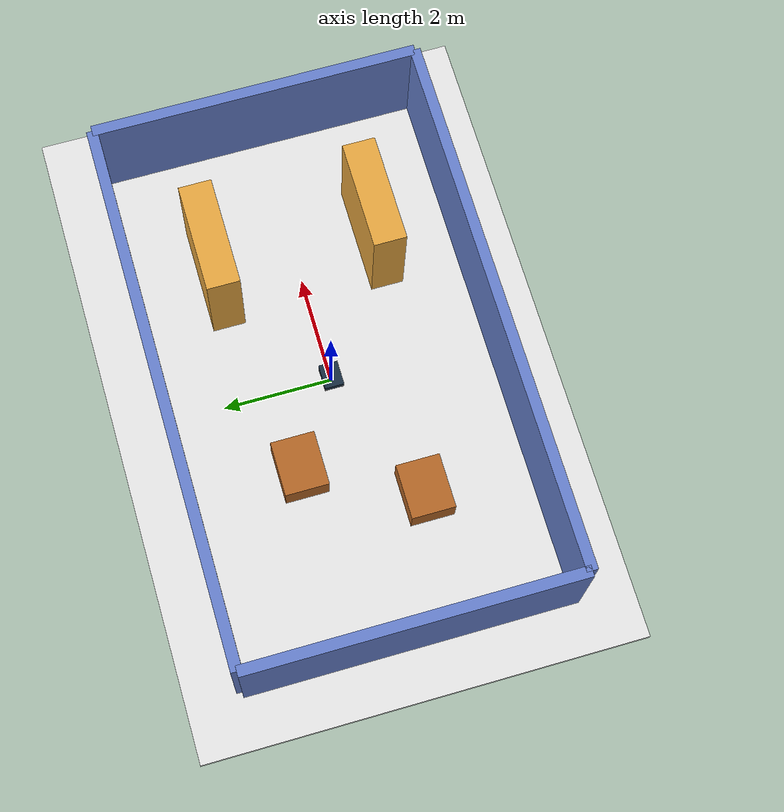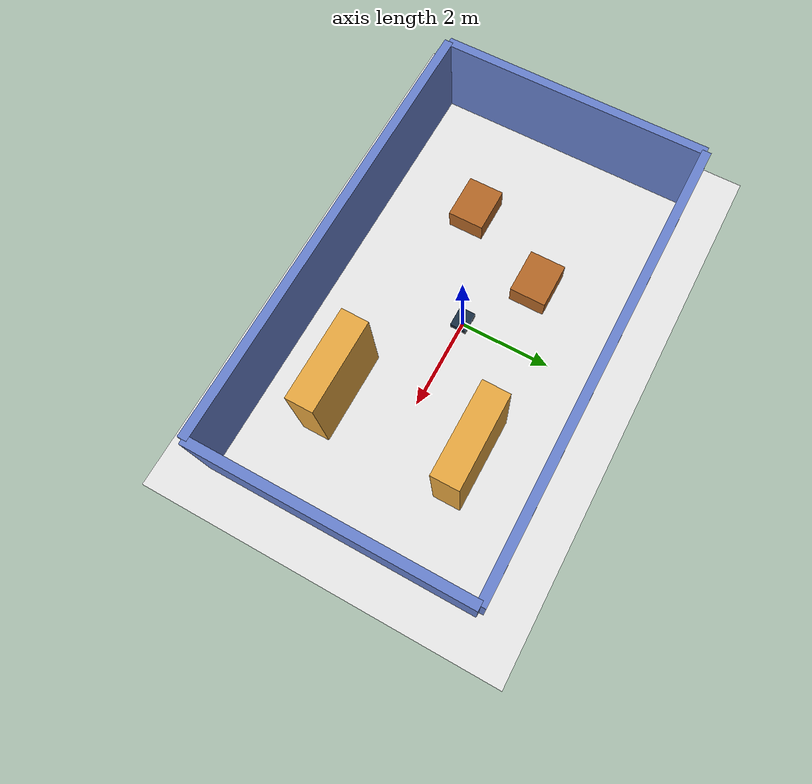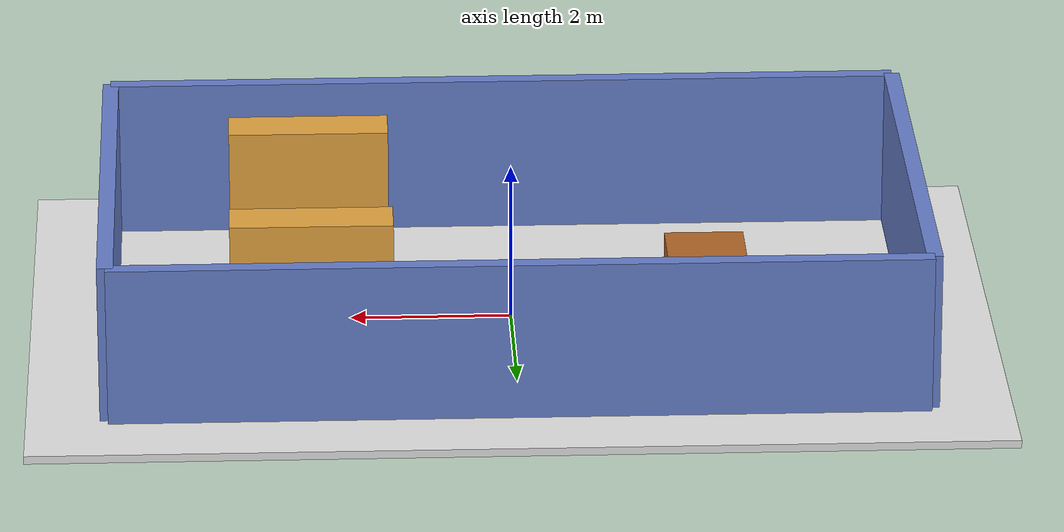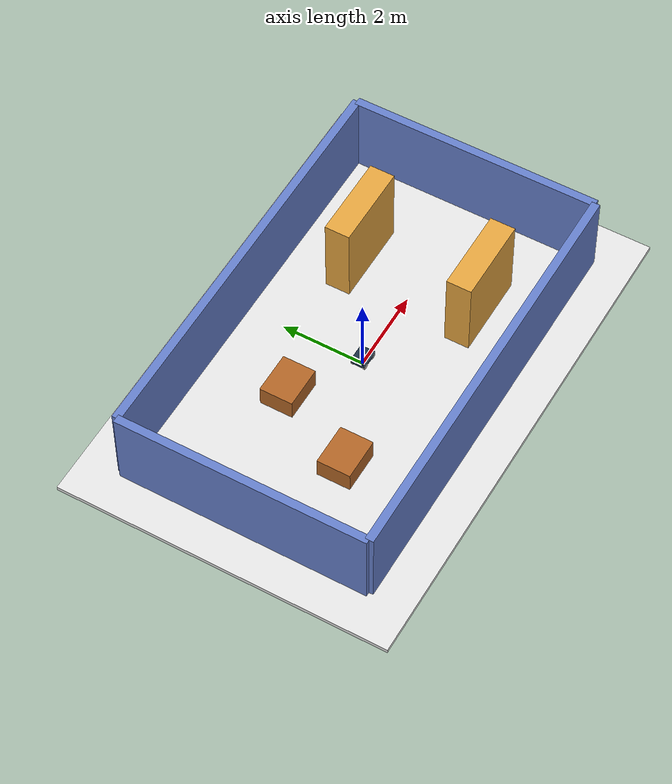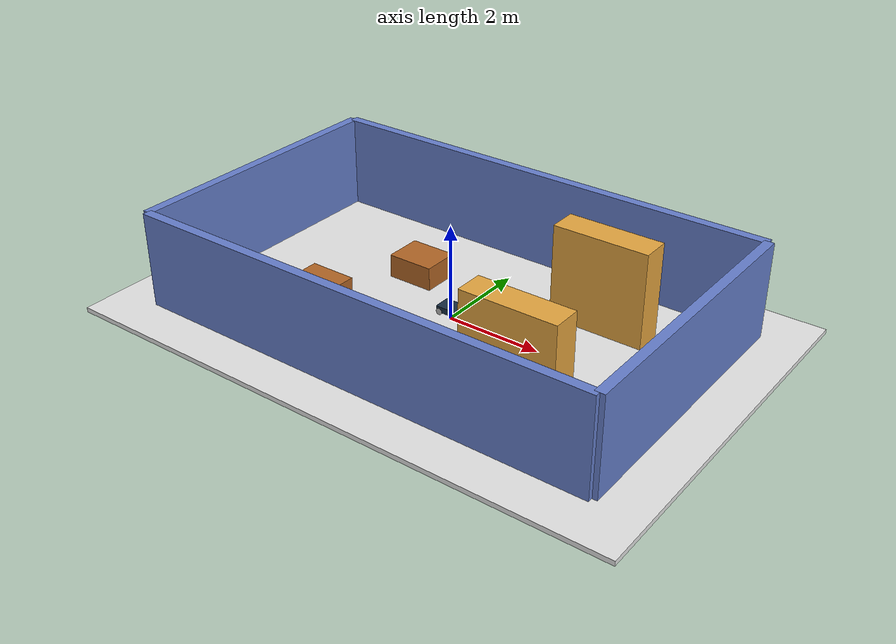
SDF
<?xml version="1.0"?>
<sdf version="1.9">
  <world name="warehouse_world">

		<!-- ОБЯЗАТЕЛЬНО: физика -->
    <plugin filename="gz-sim-physics-system"
            name="gz::sim::systems::Physics">
    </plugin>

    <!-- ОБЯЗАТЕЛЬНО: трансляция сцены в GUI -->
    <plugin filename="gz-sim-scene-broadcaster-system"
            name="gz::sim::systems::SceneBroadcaster">
    </plugin>

    <!-- ГЛАВНОЕ: система сенсоров -->
    <plugin filename="gz-sim-sensors-system"
        name="gz::sim::systems::Sensors">
      <render_engine>ogre2</render_engine>
    </plugin>

    <!-- Сцена: фон и общий “подсвет” -->
    <scene>
      <ambient>0.4 0.4 0.4 1</ambient>
      <background>0.7 0.7 0.8 1</background>
    </scene>

    <gravity>0 0 -9.81</gravity>

    <!-- Свет сверху -->
    <light name="ceiling_light" type="point">
      <pose>0 0 5 0 0 0</pose>
      <diffuse>0.9 0.9 0.9 1</diffuse>
      <specular>0.2 0.2 0.2 1</specular>
      <attenuation>
        <range>30</range>
        <constant>0.5</constant>
        <linear>0.01</linear>
        <quadratic>0.001</quadratic>
      </attenuation>
      <cast_shadows>true</cast_shadows>
    </light>

    <!-- ПОЛ: 12 x 8 м -->
    <model name="ground">
      <static>true</static>
      <link name="link">
        <pose>0 0 -0.05 0 0 0</pose>
        <collision name="collision">
          <geometry>
            <box>
              <size>12 8 0.1</size>
            </box>
          </geometry>
          <surface>
            <friction>
              <ode>
                <mu>1.8</mu>
                <mu2>1.8</mu2>
                <slip1>0.0</slip1>
                <slip2>0.0</slip2>
              </ode>
            </friction>
          </surface>
        </collision>
        <visual name="visual">
          <geometry>
            <box>
              <size>12 8 0.1</size>
            </box>
          </geometry>
          <material>
            <ambient>0.7 0.7 0.7 1</ambient>
            <diffuse>0.9 0.9 0.9 1</diffuse>
            <specular>0.1 0.1 0.1 1</specular>
          </material>
        </visual>
      </link>
    </model>

    <!-- СТЕНЫ (прямоугольник 10 x 6 м, высота 2 м) -->
    <model name="wall_north">
      <static>true</static>
      <link name="link">
        <pose>0 3 1 0 0 0</pose>
        <collision name="collision">
          <geometry>
            <box>
              <size>10 0.2 2</size>
            </box>
          </geometry>
        </collision>
        <visual name="visual">
          <geometry>
            <box>
              <size>10 0.2 2</size>
            </box>
          </geometry>
          <material>
            <ambient>0.3 0.4 0.7 1</ambient>
            <diffuse>0.4 0.5 0.8 1</diffuse>
          </material>
        </visual>
      </link>
    </model>

    <model name="wall_south">
      <static>true</static>
      <link name="link">
        <pose>0 -3 1 0 0 0</pose>
        <collision name="collision">
          <geometry>
            <box>
              <size>10 0.2 2</size>
            </box>
          </geometry>
        </collision>
        <visual name="visual">
          <geometry>
            <box>
              <size>10 0.2 2</size>
            </box>
          </geometry>
          <material>
            <ambient>0.3 0.4 0.7 1</ambient>
            <diffuse>0.4 0.5 0.8 1</diffuse>
          </material>
        </visual>
      </link>
    </model>

    <model name="wall_east">
      <static>true</static>
      <link name="link">
        <pose>5 0 1 0 0 0</pose>
        <collision name="collision">
          <geometry>
            <box>
              <size>0.2 6 2</size>
            </box>
          </geometry>
        </collision>
        <visual name="visual">
          <geometry>
            <box>
              <size>0.2 6 2</size>
            </box>
          </geometry>
          <material>
            <ambient>0.3 0.4 0.7 1</ambient>
            <diffuse>0.4 0.5 0.8 1</diffuse>
          </material>
        </visual>
      </link>
    </model>

    <model name="wall_west">
      <static>true</static>
      <link name="link">
        <pose>-5 0 1 0 0 0</pose>
        <collision name="collision">
          <geometry>
            <box>
              <size>0.2 6 2</size>
            </box>
          </geometry>
        </collision>
        <visual name="visual">
          <geometry>
            <box>
              <size>0.2 6 2</size>
            </box>
          </geometry>
          <material>
            <ambient>0.3 0.4 0.7 1</ambient>
            <diffuse>0.4 0.5 0.8 1</diffuse>
          </material>
        </visual>
      </link>
    </model>

    <!-- РЯД СТЕЛЛАЖЕЙ В ПРАВОЙ ЧАСТИ ЗАЛА -->
    <model name="rack_row_1">
      <static>true</static>
      <link name="link">
        <pose>2.5 1.5 1 0 0 0</pose>
        <collision name="collision">
          <geometry>
            <box>
              <size>2 0.6 2</size>
            </box>
          </geometry>
        </collision>
        <visual name="visual">
          <geometry>
            <box>
              <size>2 0.6 2</size>
            </box>
          </geometry>
          <material>
            <ambient>0.7 0.55 0.2 1</ambient>
            <diffuse>0.9 0.65 0.25 1</diffuse>
          </material>
        </visual>
      </link>
    </model>

    <model name="rack_row_2">
      <static>true</static>
      <link name="link">
        <pose>2.5 -1.5 1 0 0 0</pose>
        <collision name="collision">
          <geometry>
            <box>
              <size>2 0.6 2</size>
            </box>
          </geometry>
        </collision>
        <visual name="visual">
          <geometry>
            <box>
              <size>2 0.6 2</size>
            </box>
          </geometry>
          <material>
            <ambient>0.7 0.55 0.2 1</ambient>
            <diffuse>0.9 0.65 0.25 1</diffuse>
          </material>
        </visual>
      </link>
    </model>

    <!-- ПАЛЛЕТЫ / ЯЩИКИ -->
    <model name="pallet_1">
      <static>true</static>
      <link name="link">
        <pose>-1.5 1.0 0.25 0 0 0</pose>
        <collision name="collision">
          <geometry>
            <box>
              <size>1.0 0.8 0.5</size>
            </box>
          </geometry>
        </collision>
        <visual name="visual">
          <geometry>
            <box>
              <size>1.0 0.8 0.5</size>
            </box>
          </geometry>
          <material>
            <ambient>0.5 0.3 0.1 1</ambient>
            <diffuse>0.7 0.4 0.15 1</diffuse>
          </material>
        </visual>
      </link>
    </model>

    <model name="pallet_2">
      <static>true</static>
      <link name="link">
        <pose>-2.5 -1.0 0.25 0 0 0</pose>
        <collision name="collision">
          <geometry>
            <box>
              <size>1.0 0.8 0.5</size>
            </box>
          </geometry>
        </collision>
        <visual name="visual">
          <geometry>
            <box>
              <size>1.0 0.8 0.5</size>
            </box>
          </geometry>
          <material>
            <ambient>0.5 0.3 0.1 1</ambient>
            <diffuse>0.7 0.4 0.15 1</diffuse>
          </material>
        </visual>
      </link>
    </model>

    <!-- РОБОТ -->
    <include>
      <uri>model://diff_robot</uri>
      <name>diff_robot</name>
      <pose>0 0 0.11 0 0 0</pose>
    </include>

  </world>
</sdf>

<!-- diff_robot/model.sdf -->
<sdf version="1.9">
  <model name="diff_robot">
    <static>false</static>
    <pose>0 0 0 0 0 0</pose>

    <!-- ================== КОРПУС ================== -->
    <link name="base_link">
      <pose>0 0 0.12 0 0 0</pose>
      <inertial>
        <mass>12.0</mass>
        <inertia>
          <ixx>0.18</ixx><ixy>0</ixy><ixz>0</ixz>
          <iyy>0.24</iyy><iyz>0</iyz>
          <izz>0.30</izz>
        </inertia>
      </inertial>
      <visual name="base_vis">
        <geometry>
          <box><size>0.45 0.35 0.12</size></box>
        </geometry>
        <material>
          <ambient>0.08 0.12 0.18 1</ambient>
          <diffuse>0.10 0.18 0.26 1</diffuse>
        </material>
      </visual>
      <collision name="base_col">
        <geometry>
          <box><size>0.45 0.35 0.12</size></box>
        </geometry>
      </collision>
    </link>

    <!-- ================== КОЛЁСА ================== -->
    <link name="wheel_fl">
      <pose>0.16 0.15 0.07 1.57079632679 0 0</pose>
      <inertial>
        <mass>0.6</mass>
        <inertia>
          <ixx>0.0012</ixx><ixy>0</ixy><ixz>0</ixz>
          <iyy>0.0006</iyy><iyz>0</iyz>
          <izz>0.0012</izz>
        </inertia>
      </inertial>
      <visual name="vis">
        <geometry>
          <cylinder><radius>0.07</radius><length>0.05</length></cylinder>
        </geometry>
      </visual>
      <collision name="col">
        <geometry>
          <cylinder><radius>0.07</radius><length>0.05</length></cylinder>
        </geometry>
        <surface>
          <friction>
            <ode>
              <mu>1.8</mu>
              <mu2>1.8</mu2>
              <slip1>0.02</slip1>
              <slip2>0.02</slip2>
            </ode>
          </friction>
        </surface>
      </collision>
    </link>
    <joint name="wheel_fl_joint" type="revolute">
      <parent>base_link</parent>
      <child>wheel_fl</child>
      <axis>
        <xyz expressed_in="wheel_fl">0 0 1</xyz>
        <limit><lower>-1e16</lower><upper>1e16</upper></limit>
      </axis>
    </joint>

    <link name="wheel_fr">
      <pose>0.16 -0.15 0.07 1.57079632679 0 0</pose>
      <inertial>
        <mass>0.6</mass>
        <inertia>
          <ixx>0.0012</ixx><ixy>0</ixy><ixz>0</ixz>
          <iyy>0.0006</iyy><iyz>0</iyz>
          <izz>0.0012</izz>
        </inertia>
      </inertial>
      <visual name="vis">
        <geometry>
          <cylinder><radius>0.07</radius><length>0.05</length></cylinder>
        </geometry>
      </visual>
      <collision name="col">
        <geometry>
          <cylinder><radius>0.07</radius><length>0.05</length></cylinder>
        </geometry>
        <surface>
          <friction>
            <ode>
              <mu>1.8</mu>
              <mu2>1.8</mu2>
              <slip1>0.02</slip1>
              <slip2>0.02</slip2>
            </ode>
          </friction>
        </surface>
      </collision>
    </link>
    <joint name="wheel_fr_joint" type="revolute">
      <parent>base_link</parent>
      <child>wheel_fr</child>
      <axis>
        <xyz expressed_in="wheel_fr">0 0 1</xyz>
        <limit><lower>-1e16</lower><upper>1e16</upper></limit>
      </axis>
    </joint>

    <link name="wheel_rl">
      <pose>-0.16 0.15 0.07 1.57079632679 0 0</pose>
      <inertial>
        <mass>0.6</mass>
        <inertia>
          <ixx>0.0012</ixx><ixy>0</ixy><ixz>0</ixz>
          <iyy>0.0006</iyy><iyz>0</iyz>
          <izz>0.0012</izz>
        </inertia>
      </inertial>
      <visual name="vis">
        <geometry>
          <cylinder><radius>0.07</radius><length>0.05</length></cylinder>
        </geometry>
      </visual>
      <collision name="col">
        <geometry>
          <cylinder><radius>0.07</radius><length>0.05</length></cylinder>
        </geometry>
        <surface>
          <friction>
            <ode>
              <mu>1.8</mu>
              <mu2>1.8</mu2>
              <slip1>0.02</slip1>
              <slip2>0.02</slip2>
            </ode>
          </friction>
        </surface>
      </collision>
    </link>
    <joint name="wheel_rl_joint" type="revolute">
      <parent>base_link</parent>
      <child>wheel_rl</child>
      <axis>
        <xyz expressed_in="wheel_rl">0 0 1</xyz>
        <limit><lower>-1e16</lower><upper>1e16</upper></limit>
      </axis>
    </joint>

    <link name="wheel_rr">
      <pose>-0.16 -0.15 0.07 1.57079632679 0 0</pose>
      <inertial>
        <mass>0.6</mass>
        <inertia>
          <ixx>0.0012</ixx><ixy>0</ixy><ixz>0</ixz>
          <iyy>0.0006</iyy><iyz>0</iyz>
          <izz>0.0012</izz>
        </inertia>
      </inertial>
      <visual name="vis">
        <geometry>
          <cylinder><radius>0.07</radius><length>0.05</length></cylinder>
        </geometry>
      </visual>
      <collision name="col">
        <geometry>
          <cylinder><radius>0.07</radius><length>0.05</length></cylinder>
        </geometry>
        <surface>
          <friction>
            <ode>
              <mu>1.8</mu>
              <mu2>1.8</mu2>
              <slip1>0.02</slip1>
              <slip2>0.02</slip2>
            </ode>
          </friction>
        </surface>
      </collision>
    </link>
    <joint name="wheel_rr_joint" type="revolute">
      <parent>base_link</parent>
      <child>wheel_rr</child>
      <axis>
        <xyz expressed_in="wheel_rr">0 0 1</xyz>
        <limit><lower>-1e16</lower><upper>1e16</upper></limit>
      </axis>
    </joint>

    <!-- ================== СЕНСОРНАЯ МАЧТА ================== -->
    <link name="mast_link">
      <pose>0 0 0.30 0 0 0</pose>
      <inertial>
        <mass>0.08</mass>
        <inertia>
          <ixx>0.0004</ixx><ixy>0</ixy><ixz>0</ixz>
          <iyy>0.0004</iyy><iyz>0</iyz>
          <izz>0.0004</izz>
        </inertia>
      </inertial>
      <visual name="mast_vis">
        <geometry>
          <cylinder><radius>0.01</radius><length>0.36</length></cylinder>
        </geometry>
        <material>
          <ambient>0.18 0.18 0.18 1</ambient>
          <diffuse>0.22 0.22 0.22 1</diffuse>
        </material>
      </visual>
      <collision name="mast_col">
        <geometry>
          <cylinder><radius>0.01</radius><length>0.36</length></cylinder>
        </geometry>
      </collision>
    </link>
    <joint name="mast_fixed" type="fixed">
      <parent>base_link</parent>
      <child>mast_link</child>
    </joint>

    <!-- RGB-D камера на верхушке мачты -->
    <link name="camera_link">
      <pose>0 0 0.48 0 0 0</pose>
      <inertial>
        <mass>0.12</mass>
        <inertia>
          <ixx>0.0008</ixx><ixy>0</ixy><ixz>0</ixz>
          <iyy>0.0008</iyy><iyz>0</iyz>
          <izz>0.0008</izz>
        </inertia>
      </inertial>

      <sensor name="rgbd_camera" type="rgbd_camera">
        <pose>0 0 0 0 -1.57079632679 0</pose>
        <always_on>true</always_on>
        <update_rate>15</update_rate>
        <visualize>true</visualize>

        <topic>/camera/color/image</topic>
        <depth_topic>/camera/depth/image</depth_topic>
        <point_cloud_topic>/camera/depth/points</point_cloud_topic>
        <camera_info_topic>/camera/color/camera_info</camera_info_topic>
        <frame_id>camera_link</frame_id>

        <camera>
          <horizontal_fov>1.047</horizontal_fov>
          <image>
            <width>640</width>
            <height>480</height>
            <format>R8G8B8</format>
          </image>
          <clip>
            <near>0.05</near>
            <far>25</far>
          </clip>
        </camera>
      </sensor>

      <visual name="cam_body">
        <geometry>
          <box><size>0.06 0.06 0.04</size></box>
        </geometry>
        <material>
          <ambient>0.08 0.08 0.08 1</ambient>
          <diffuse>0.10 0.10 0.10 1</diffuse>
        </material>
      </visual>
      <collision name="cam_col">
        <geometry>
          <box><size>0.06 0.06 0.04</size></box>
        </geometry>
      </collision>
    </link>
    <joint name="camera_fixed" type="fixed">
      <parent>mast_link</parent>
      <child>camera_link</child>
    </joint>

    <!-- Лидар 2D (GPU Lidar для Harmonic) -->
    <link name="lidar_link">
      <pose>0.18 0 0.34 0 0 0</pose>
      <inertial>
        <mass>0.10</mass>
        <inertia>
          <ixx>0.0002</ixx><ixy>0</ixy><ixz>0</ixz>
          <iyy>0.0002</iyy><iyz>0</iyz>
          <izz>0.0002</izz>
        </inertia>
      </inertial>

      <sensor name="lidar" type="gpu_lidar">
        <pose>0 0 0 0 0 0</pose>
        <always_on>true</always_on>
        <update_rate>15</update_rate>
        <visualize>true</visualize>

        <topic>/scan</topic>
        <frame_id>lidar_link</frame_id>

        <lidar>
          <scan>
            <horizontal>
              <samples>720</samples>
              <resolution>1</resolution>
              <min_angle>-3.14159</min_angle>
              <max_angle>3.14159</max_angle>
            </horizontal>
          </scan>
          <range>
            <min>0.18</min>
            <max>18.0</max>
          </range>
        </lidar>
      </sensor>
    </link>
    <joint name="lidar_joint" type="fixed">
      <parent>base_link</parent>
      <child>lidar_link</child>
    </joint>

    <!-- IMU -->
    <link name="imu_link">
      <pose>0 0 0.20 0 0 0</pose>
      <inertial>
        <mass>0.05</mass>
        <inertia>
          <ixx>0.0001</ixx><ixy>0</ixy><ixz>0</ixz>
          <iyy>0.0001</iyy><iyz>0</iyz>
          <izz>0.0001</izz>
        </inertia>
      </inertial>
      <sensor name="imu" type="imu">
        <always_on>true</always_on>
        <update_rate>100</update_rate>
        <topic>/imu</topic>
        <frame_id>imu_link</frame_id>
      </sensor>
    </link>
    <joint name="imu_fixed" type="fixed">
      <parent>base_link</parent>
      <child>imu_link</child>
    </joint>

    <!-- Plugin: диф. привод -->
    <plugin name="gz::sim::systems::DiffDrive" filename="gz-sim-diff-drive-system">
      <left_joint>wheel_fl_joint</left_joint>
      <left_joint>wheel_rl_joint</left_joint>
      <right_joint>wheel_fr_joint</right_joint>
      <right_joint>wheel_rr_joint</right_joint>
      <wheel_separation>0.30</wheel_separation>
      <wheel_radius>0.07</wheel_radius>
      <odom_publish_frequency>50</odom_publish_frequency>
      <topic>/cmd_vel</topic>
      <odom_topic>/wheel_odom</odom_topic>
      <frame_id>odom</frame_id>
      <child_frame_id>base_footprint</child_frame_id>
      <publish_odom>false</publish_odom>
    </plugin>

    <plugin name="gz::sim::systems::OdometryPublisher"
            filename="gz-sim-odometry-publisher-system">
      <odom_frame>odom</odom_frame>
      <robot_base_frame>base_link</robot_base_frame>
      <dimensions>2</dimensions>
      <odom_topic>/odometry</odom_topic>
      <odom_publish_frequency>50</odom_publish_frequency>
    </plugin>

  </model>
</sdf>
